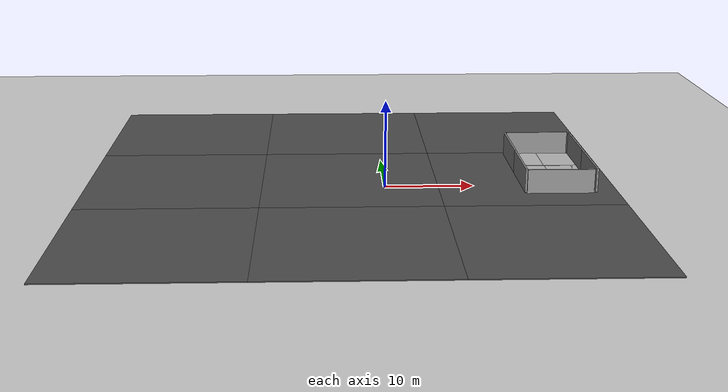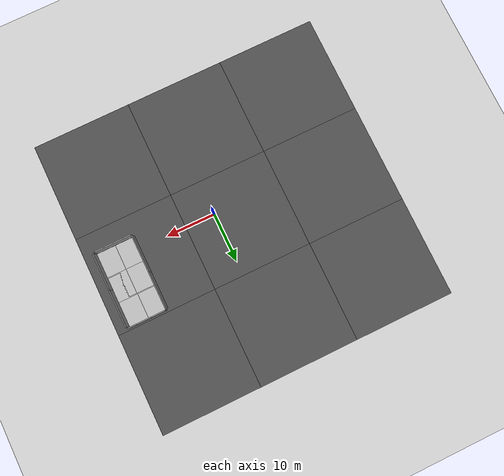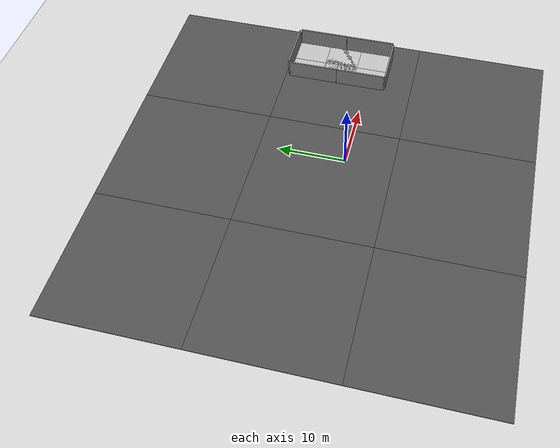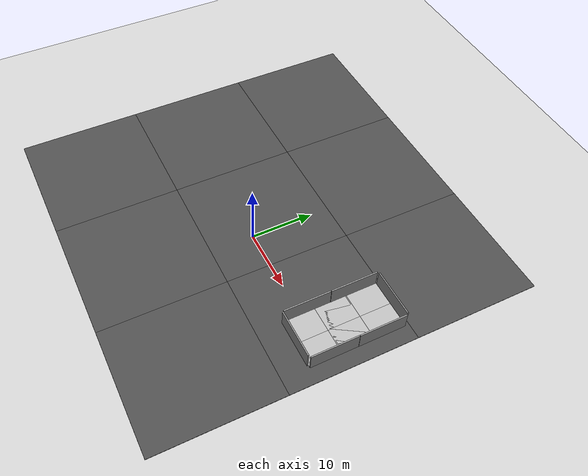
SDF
<sdf version="1.6">
 <world name="default">
  <light name="sun" type="directional">
   <pose>0 0 10 0 -0 0</pose>
   <diffuse>0.8 0.8 0.8 1</diffuse>
   <specular>0.2 0.2 0.2 1</specular>
   <attenuation>
    <range>1000</range>
    <constant>0.9</constant>
    <linear>0.01</linear>
    <quadratic>0.001</quadratic>
   </attenuation>
   <direction>-0.5 0.1 -0.9</direction>
  </light>
  <physics name="default_physics" default="0" type="ode">
   <ode>
    <solver>
     <type>quick</type>
     <iters>10</iters>
     <sor>1.3</sor>
     <use_dynamic_moi_rescaling>0</use_dynamic_moi_rescaling>
    </solver>
    <constraints>
     <cfm>0</cfm>
     <erp>0.2</erp>
     <contact_max_correcting_vel>100</contact_max_correcting_vel>
     <contact_surface_layer>0.001</contact_surface_layer>
    </constraints>
   </ode>
   <max_step_size>0.002</max_step_size>
   <real_time_factor>1</real_time_factor>
   <real_time_update_rate>500</real_time_update_rate>
  </physics>
  <scene><ambient>0.4 0.4 0.4 1</ambient><background>0.7 0.7 0.7 1</background><shadows>1</shadows></scene>
  <spherical_coordinates>
   <surface_model>EARTH_WGS84</surface_model>
   <latitude_deg>0</latitude_deg>
   <longitude_deg>0</longitude_deg>
   <elevation>0</elevation>
   <heading_deg>0</heading_deg>
  </spherical_coordinates>
  <model name="ground_plane">
   <static>1</static>
   <link name="link">
    <collision name="collision">
     <geometry><plane><normal>0 0 1</normal><size>100 100</size></plane></geometry>
     <surface><friction><ode><mu>100</mu><mu2>50</mu2></ode></friction></surface>
    </collision>
    <visual name="visual">
     <cast_shadows>0</cast_shadows>
     <geometry><plane><normal>0 0 1</normal><size>100 100</size></plane></geometry>
     <material>
      <script><uri>file://media/materials/scripts/gazebo.material</uri><name>Gazebo/Grey</name></script>
     </material>
    </visual>
    <velocity_decay><linear>0</linear><angular>0</angular></velocity_decay>
   </link>
  </model>
  <model name="asphalt_plane">
   <static>1</static>
   <link name="link">
    <collision name="collision"><geometry><box><size>20 20 0.1</size></box></geometry></collision>
    <visual name="visual">
     <cast_shadows>0</cast_shadows>
     <geometry><box><size>20 20 0.1</size></box></geometry>
     <material>
      <script>
       <uri>model://asphalt_plane/materials/scripts</uri>
       <uri>model://asphalt_plane/materials/textures</uri>
       <name>vrc/asphalt</name>
      </script>
     </material>
    </visual>
    <velocity_decay><linear>0</linear><angular>0</angular></velocity_decay>
   </link>
   <pose>-4 3 0 0 -0 0</pose>
  </model>
  <model name="asphalt_plane_0">
   <static>1</static>
   <link name="link">
    <collision name="collision"><geometry><box><size>20 20 0.1</size></box></geometry></collision>
    <visual name="visual">
     <cast_shadows>0</cast_shadows>
     <geometry><box><size>20 20 0.1</size></box></geometry>
     <material>
      <script>
       <uri>model://asphalt_plane/materials/scripts</uri>
       <uri>model://asphalt_plane/materials/textures</uri>
       <name>vrc/asphalt</name>
      </script>
     </material>
    </visual>
    <velocity_decay><linear>0</linear><angular>0</angular></velocity_decay>
   </link>
   <pose>-4 23 0 0 -0 0</pose>
  </model>
  <model name="asphalt_plane_1">
   <static>1</static>
   <link name="link">
    <collision name="collision"><geometry><box><size>20 20 0.1</size></box></geometry></collision>
    <visual name="visual">
     <cast_shadows>0</cast_shadows>
     <geometry><box><size>20 20 0.1</size></box></geometry>
     <material>
      <script>
       <uri>model://asphalt_plane/materials/scripts</uri>
       <uri>model://asphalt_plane/materials/textures</uri>
       <name>vrc/asphalt</name>
      </script>
     </material>
    </visual>
    <velocity_decay><linear>0</linear><angular>0</angular></velocity_decay>
   </link>
   <pose>16 3 0 0 -0 0</pose>
  </model>
  <model name="asphalt_plane_2">
   <static>1</static>
   <link name="link">
    <collision name="collision"><geometry><box><size>20 20 0.1</size></box></geometry></collision>
    <visual name="visual">
     <cast_shadows>0</cast_shadows>
     <geometry><box><size>20 20 0.1</size></box></geometry>
     <material>
      <script>
       <uri>model://asphalt_plane/materials/scripts</uri>
       <uri>model://asphalt_plane/materials/textures</uri>
       <name>vrc/asphalt</name>
      </script>
     </material>
    </visual>
    <velocity_decay><linear>0</linear><angular>0</angular></velocity_decay>
   </link>
   <pose>16 23 0 0 -0 0</pose>
  </model>
  <model name="asphalt_plane_3">
   <static>1</static>
   <link name="link">
    <collision name="collision"><geometry><box><size>20 20 0.1</size></box></geometry></collision>
    <visual name="visual">
     <cast_shadows>0</cast_shadows>
     <geometry><box><size>20 20 0.1</size></box></geometry>
     <material>
      <script>
       <uri>model://asphalt_plane/materials/scripts</uri>
       <uri>model://asphalt_plane/materials/textures</uri>
       <name>vrc/asphalt</name>
      </script>
     </material>
    </visual>
    <velocity_decay><linear>0</linear><angular>0</angular></velocity_decay>
   </link>
   <pose>16 -17 0 0 -0 0</pose>
  </model>
  <model name="asphalt_plane_5">
   <static>1</static>
   <link name="link">
    <collision name="collision"><geometry><box><size>20 20 0.1</size></box></geometry></collision>
    <visual name="visual">
     <cast_shadows>0</cast_shadows>
     <geometry><box><size>20 20 0.1</size></box></geometry>
     <material>
      <script>
       <uri>model://asphalt_plane/materials/scripts</uri>
       <uri>model://asphalt_plane/materials/textures</uri>
       <name>vrc/asphalt</name>
      </script>
     </material>
    </visual>
    <velocity_decay><linear>0</linear><angular>0</angular></velocity_decay>
   </link>
   <pose>-4 -17 0 0 -0 0</pose>
  </model>
  <model name="asphalt_plane_6">
   <static>1</static>
   <link name="link">
    <collision name="collision"><geometry><box><size>20 20 0.1</size></box></geometry></collision>
    <visual name="visual">
     <cast_shadows>0</cast_shadows>
     <geometry><box><size>20 20 0.1</size></box></geometry>
     <material>
      <script>
       <uri>model://asphalt_plane/materials/scripts</uri>
       <uri>model://asphalt_plane/materials/textures</uri>
       <name>vrc/asphalt</name>
      </script>
     </material>
    </visual>
    <velocity_decay><linear>0</linear><angular>0</angular></velocity_decay>
   </link>
   <pose>-24 -17 0 0 -0 0</pose>
  </model>
  <model name="asphalt_plane_7">
   <static>1</static>
   <link name="link">
    <collision name="collision"><geometry><box><size>20 20 0.1</size></box></geometry></collision>
    <visual name="visual">
     <cast_shadows>0</cast_shadows>
     <geometry><box><size>20 20 0.1</size></box></geometry>
     <material>
      <script>
       <uri>model://asphalt_plane/materials/scripts</uri>
       <uri>model://asphalt_plane/materials/textures</uri>
       <name>vrc/asphalt</name>
      </script>
     </material>
    </visual>
    <velocity_decay><linear>0</linear><angular>0</angular></velocity_decay>
   </link>
   <pose>-24 3 0 0 -0 0</pose>
  </model>
  <model name="asphalt_plane_8">
   <static>1</static>
   <link name="link">
    <collision name="collision"><geometry><box><size>20 20 0.1</size></box></geometry></collision>
    <visual name="visual">
     <cast_shadows>0</cast_shadows>
     <geometry><box><size>20 20 0.1</size></box></geometry>
     <material>
      <script>
       <uri>model://asphalt_plane/materials/scripts</uri>
       <uri>model://asphalt_plane/materials/textures</uri>
       <name>vrc/asphalt</name>
      </script>
     </material>
    </visual>
    <velocity_decay><linear>0</linear><angular>0</angular></velocity_decay>
   </link>
   <pose>-24 23 0 0 -0 0</pose>
  </model>
  <gravity>0 0 -9.8</gravity>
  <magnetic_field>6e-06 2.3e-05 -4.2e-05</magnetic_field>
  <atmosphere type="adiabatic"/>
  <model name="mud_box">
   <static>1</static>
   <link name="link">
    <collision name="collision"><geometry><box><size>8 10 0.2</size></box></geometry></collision>
    <visual name="visual_1">
     <pose>-2 2.5 0 0 -0 0</pose>
     <cast_shadows>0</cast_shadows>
     <geometry><box><size>4 5 0.2</size></box></geometry>
     <material>
      <script>
       <uri>model://mud_box/materials/scripts</uri>
       <uri>model://mud_box/materials/textures</uri>
       <name>vrc/mud</name>
      </script>
     </material>
    </visual>
    <visual name="visual_2">
     <pose>2 2.5 0 0 -0 0</pose>
     <cast_shadows>0</cast_shadows>
     <geometry><box><size>4 5 0.2</size></box></geometry>
     <material>
      <script>
       <uri>model://mud_box/materials/scripts</uri>
       <uri>model://mud_box/materials/textures</uri>
       <name>vrc/mud</name>
      </script>
     </material>
    </visual>
    <visual name="visual_3">
     <pose>2 -2.5 0 0 -0 0</pose>
     <cast_shadows>0</cast_shadows>
     <geometry><box><size>4 5 0.2</size></box></geometry>
     <material>
      <script>
       <uri>model://mud_box/materials/scripts</uri>
       <uri>model://mud_box/materials/textures</uri>
       <name>vrc/mud</name>
      </script>
     </material>
    </visual>
    <visual name="visual_4">
     <pose>-2 -2.5 0 0 -0 0</pose>
     <cast_shadows>0</cast_shadows>
     <geometry><box><size>4 5 0.2</size></box></geometry>
     <material>
      <script>
       <uri>model://mud_box/materials/scripts</uri>
       <uri>model://mud_box/materials/textures</uri>
       <name>vrc/mud</name>
      </script>
     </material>
    </visual>
   </link>
   <pose>19.6026 2.28027 0 0 -0 0</pose>
  </model>
  <model name="grey_wall">
   <static>1</static>
   <link name="link">
    <pose>0 0 1.4 0 -0 0</pose>
    <collision name="collision"><geometry><box><size>7.5 0.2 2.8</size></box></geometry></collision>
    <visual name="visual">
     <cast_shadows>0</cast_shadows>
     <geometry><box><size>7.5 0.2 2.8</size></box></geometry>
     <material>
      <script>
       <uri>model://grey_wall/materials/scripts</uri>
       <uri>model://grey_wall/materials/textures</uri>
       <name>vrc/grey_wall</name>
      </script>
     </material>
    </visual>
   </link>
   <pose>19.5345 12.5582 0 0 -0 0</pose>
  </model>
  <model name="grey_wall_clone">
   <static>1</static>
   <link name="link">
    <pose>0 0 1.4 0 -0 0</pose>
    <collision name="collision"><geometry><box><size>7.5 0.2 2.8</size></box></geometry></collision>
    <visual name="visual">
     <cast_shadows>0</cast_shadows>
     <geometry><box><size>7.5 0.2 2.8</size></box></geometry>
     <material>
      <script>
       <uri>model://grey_wall/materials/scripts</uri>
       <uri>model://grey_wall/materials/textures</uri>
       <name>vrc/grey_wall</name>
      </script>
     </material>
    </visual>
   </link>
   <pose>19.4662 -2.85958 0 0 -0 0</pose>
  </model>
  <model name="grey_wall_clone_clone">
   <static>1</static>
   <link name="link">
    <pose>0 0 1.4 0 -0 0</pose>
    <collision name="collision"><geometry><box><size>7.5 0.2 2.8</size></box></geometry></collision>
    <visual name="visual">
     <cast_shadows>0</cast_shadows>
     <geometry><box><size>7.5 0.2 2.8</size></box></geometry>
     <material>
      <script>
       <uri>model://grey_wall/materials/scripts</uri>
       <uri>model://grey_wall/materials/textures</uri>
       <name>vrc/grey_wall</name>
      </script>
     </material>
    </visual>
   </link>
   <pose>23.5397 1.04065 0 0 0 -1.56628</pose>
  </model>
  <model name="grey_wall_clone_clone_clone">
   <static>1</static>
   <link name="link">
    <pose>0 0 1.4 0 -0 0</pose>
    <collision name="collision"><geometry><box><size>7.5 0.2 2.8</size></box></geometry></collision>
    <visual name="visual">
     <cast_shadows>0</cast_shadows>
     <geometry><box><size>7.5 0.2 2.8</size></box></geometry>
     <material>
      <script>
       <uri>model://grey_wall/materials/scripts</uri>
       <uri>model://grey_wall/materials/textures</uri>
       <name>vrc/grey_wall</name>
      </script>
     </material>
    </visual>
   </link>
   <pose>15.5872 1.03875 0 0 0 -1.56628</pose>
  </model>
  <model name="grey_wall_clone_clone_clone_clone">
   <static>1</static>
   <link name="link">
    <pose>0 0 1.4 0 -0 0</pose>
    <collision name="collision"><geometry><box><size>7.5 0.2 2.8</size></box></geometry></collision>
    <visual name="visual">
     <cast_shadows>0</cast_shadows>
     <geometry><box><size>7.5 0.2 2.8</size></box></geometry>
     <material>
      <script>
       <uri>model://grey_wall/materials/scripts</uri>
       <uri>model://grey_wall/materials/textures</uri>
       <name>vrc/grey_wall</name>
      </script>
     </material>
    </visual>
   </link>
   <pose>23.5314 8.57068 0 0 0 -1.56628</pose>
  </model>
  <model name="grey_wall_clone_clone_clone_clone_clone">
   <static>1</static>
   <link name="link">
    <pose>0 0 1.4 0 -0 0</pose>
    <collision name="collision"><geometry><box><size>7.5 0.2 2.8</size></box></geometry></collision>
    <visual name="visual">
     <cast_shadows>0</cast_shadows>
     <geometry><box><size>7.5 0.2 2.8</size></box></geometry>
     <material>
      <script>
       <uri>model://grey_wall/materials/scripts</uri>
       <uri>model://grey_wall/materials/textures</uri>
       <name>vrc/grey_wall</name>
      </script>
     </material>
    </visual>
   </link>
   <pose>15.5697 8.5921 0 0 0 -1.56628</pose>
  </model>
  <model name="mud_box_clone">
   <static>1</static>
   <link name="link">
    <collision name="collision"><geometry><box><size>8 10 0.2</size></box></geometry></collision>
    <visual name="visual_1">
     <pose>-2 2.5 0 0 -0 0</pose>
     <cast_shadows>0</cast_shadows>
     <geometry><box><size>4 5 0.2</size></box></geometry>
     <material>
      <script>
       <uri>model://mud_box/materials/scripts</uri>
       <uri>model://mud_box/materials/textures</uri>
       <name>vrc/mud</name>
      </script>
     </material>
    </visual>
    <visual name="visual_2">
     <pose>2 2.5 0 0 -0 0</pose>
     <cast_shadows>0</cast_shadows>
     <geometry><box><size>4 5 0.2</size></box></geometry>
     <material>
      <script>
       <uri>model://mud_box/materials/scripts</uri>
       <uri>model://mud_box/materials/textures</uri>
       <name>vrc/mud</name>
      </script>
     </material>
    </visual>
    <visual name="visual_3">
     <pose>2 -2.5 0 0 -0 0</pose>
     <cast_shadows>0</cast_shadows>
     <geometry><box><size>4 5 0.2</size></box></geometry>
     <material>
      <script>
       <uri>model://mud_box/materials/scripts</uri>
       <uri>model://mud_box/materials/textures</uri>
       <name>vrc/mud</name>
      </script>
     </material>
    </visual>
    <visual name="visual_4">
     <pose>-2 -2.5 0 0 -0 0</pose>
     <cast_shadows>0</cast_shadows>
     <geometry><box><size>4 5 0.2</size></box></geometry>
     <material>
      <script>
       <uri>model://mud_box/materials/scripts</uri>
       <uri>model://mud_box/materials/textures</uri>
       <name>vrc/mud</name>
      </script>
     </material>
    </visual>
   </link>
   <pose>19.5427 7.44096 0 0 -0 0</pose>
  </model>
 </world>
</sdf>
